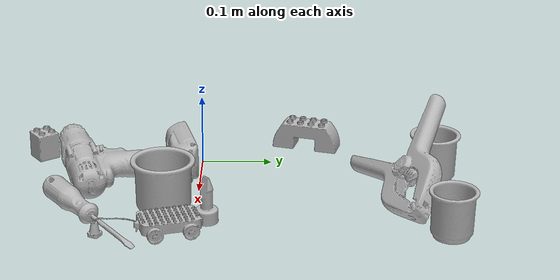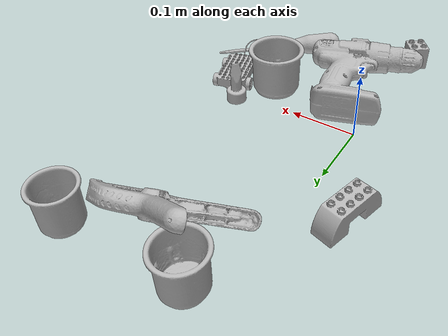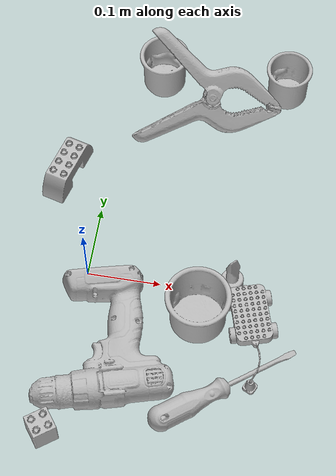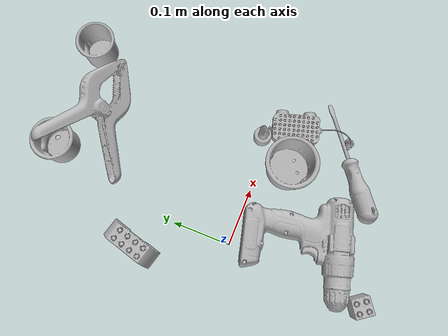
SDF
<sdf version="1.4">
  <world name="default">
    <light name="light1" type="point">
      <pose>0 0 1 0 0 0</pose>
      <diffuse>3 3 3 1</diffuse>
      <specular>3 3 3 1</specular>
    </light>
    <light name="light2" type="point">
      <pose>0 0.5 2 0 0 0</pose>
      <diffuse>1 1 1 1</diffuse>
      <specular>1 1 1 1</specular>
    </light>
    <light name="light3" type="point">
      <pose>0 0.5 2 0 0 0</pose>
      <diffuse>3 3 3 1</diffuse>
      <specular>3 3 3 1</specular>
    </light>
    <scene>
      <ambient>0.7 0.7 0.7</ambient>
    </scene>
    <model name="cup1">
      <link name="link_cup1">
        <collision name="default">
          <geometry>
            <mesh>
              <uri>model://d_cups/collision_meshes/collision.obj</uri>
              <scale>1.0 1.0 1.0</scale>
            </mesh>
          </geometry>
          <surface>
            <friction>
              <ode>
                <mu>0.5</mu>
                <mu2>0.5</mu2>
              </ode>
            </friction>
          <contact>
        <ode>
            <max_vel>0</max_vel>
            <min_depth>0.0001</min_depth>
            <kp>1e8</kp>
        </ode>
    </contact></surface>
        </collision>
        <visual name="default">
          <geometry>
            <mesh>
              <uri>model://d_cups/visual_meshes/visual.dae</uri>
              <scale>1.0 1.0 1.0</scale>
            </mesh>
          </geometry>
        </visual>
        <inertial>
          <mass>0.04943045228719711</mass>
          <pose>0.0008068052702583373 0.0019117395859211683 -0.0022666507866233587 0.2401104468273406 -0.24710716259907536 0.594298245500967</pose>
          <inertia>
            <ixx>4.1384912e-05</ixx>
            <iyy>4.1265153e-05</iyy>
            <izz>3.7460377e-05</izz>
            <ixy>0</ixy>
            <ixz>0</ixz>
            <iyz>0</iyz>
          </inertia>
        </inertial>
      </link>
      <pose>0.04949561506509781 0.330320805311203 0.03466007113456726 3.7356891750043274e-05 -5.5191721860617255e-05 0.42581033693344833</pose>
    </model>
    <model name="cup2">
      <link name="link_cup2">
        <collision name="default">
          <geometry>
            <mesh>
              <uri>model://c_cups/collision_meshes/collision.obj</uri>
              <scale>1.0 1.0 1.0</scale>
            </mesh>
          </geometry>
          <surface>
            <friction>
              <ode>
                <mu>0.5</mu>
                <mu2>0.5</mu2>
              </ode>
            </friction>
          <contact>
        <ode>
            <max_vel>0</max_vel>
            <min_depth>0.0001</min_depth>
            <kp>1e8</kp>
        </ode>
    </contact></surface>
        </collision>
        <visual name="default">
          <geometry>
            <mesh>
              <uri>model://c_cups/visual_meshes/visual.dae</uri>
              <scale>1.0 1.0 1.0</scale>
            </mesh>
          </geometry>
        </visual>
        <inertial>
          <mass>0.02161477506160736</mass>
          <pose>0.0007237254758365452 0.002015391131862998 -0.0012750980677083135 0.3021577101392444 0.013461522825774588 -0.08771822086046323</pose>
          <inertia>
            <ixx>1.607462e-05</ixx>
            <iyy>1.5790554e-05</iyy>
            <izz>1.4215883e-05</izz>
            <ixy>0</ixy>
            <ixz>0</ixz>
            <iyz>0</iyz>
          </inertia>
        </inertial>
      </link>
      <pose>0.22958020865917206 0.33607038855552673 0.03345901891589165 -5.002692275262739e-07 -3.278012775768091e-07 1.4081759934816345</pose>
    </model>
    <model name="cup3">
      <link name="link_cup3">
        <collision name="default">
          <geometry>
            <mesh>
              <uri>model://g_cups/collision_meshes/collision.obj</uri>
              <scale>1.0 1.0 1.0</scale>
            </mesh>
          </geometry>
          <surface>
            <friction>
              <ode>
                <mu>0.5</mu>
                <mu2>0.5</mu2>
              </ode>
            </friction>
          <contact>
        <ode>
            <max_vel>0</max_vel>
            <min_depth>0.0001</min_depth>
            <kp>1e8</kp>
        </ode>
    </contact></surface>
        </collision>
        <visual name="default">
          <geometry>
            <mesh>
              <uri>model://g_cups/visual_meshes/visual.dae</uri>
              <scale>1.0 1.0 1.0</scale>
            </mesh>
          </geometry>
        </visual>
        <inertial>
          <mass>0.04413851350545883</mass>
          <pose>-0.0007946275873109698 -4.206433004583232e-05 -0.002132937777787447 -0.2138199678327952 -0.31410615416341514 0.3111935262320568</pose>
          <inertia>
            <ixx>5.151955e-05</ixx>
            <iyy>5.1344283e-05</iyy>
            <izz>5.3365377e-05</izz>
            <ixy>0</ixy>
            <ixz>0</ixz>
            <iyz>0</iyz>
          </inertia>
        </inertial>
      </link>
      <pose>0.1579732894897461 -0.04457096755504608 0.037199679762125015 6.87639853387641e-05 -0.00022108126717569214 0.5148713610367291</pose>
    </model>
    <model name="toy1">
      <link name="link_toy1">
        <collision name="default">
          <geometry>
            <mesh>
              <uri>model://e_lego_duplo/collision_meshes/collision.obj</uri>
              <scale>1.0 1.0 1.0</scale>
            </mesh>
          </geometry>
          <surface>
            <friction>
              <ode>
                <mu>0.5</mu>
                <mu2>0.5</mu2>
              </ode>
            </friction>
          <contact>
        <ode>
            <max_vel>0</max_vel>
            <min_depth>0.0001</min_depth>
            <kp>1e8</kp>
        </ode>
    </contact></surface>
        </collision>
        <visual name="default">
          <geometry>
            <mesh>
              <uri>model://e_lego_duplo/visual_meshes/visual.dae</uri>
              <scale>1.0 1.0 1.0</scale>
            </mesh>
          </geometry>
        </visual>
        <inertial>
          <mass>0.08806774020195007</mass>
          <pose>0.0003256051568314433 0.00023485405836254358 0.0019521453650668263 -0.02256777049150226 -6.824370740412915e-05 -0.00762515400873393</pose>
          <inertia>
            <ixx>1.8365032e-05</ixx>
            <iyy>7.537481e-05</iyy>
            <izz>7.3399904e-05</izz>
            <ixy>0</ixy>
            <ixz>0</ixz>
            <iyz>0</iyz>
          </inertia>
        </inertial>
      </link>
      <pose>-0.05904051288962364 0.15217973291873932 0.02180900052189827 4.1783271776264923e-07 -6.866915725247893e-08 -1.8323864755554167</pose>
    </model>
    <model name="toy2">
      <link name="link_toy2">
        <collision name="default">
          <geometry>
            <mesh>
              <uri>model://b_lego_duplo/collision_meshes/collision.obj</uri>
              <scale>1.0 1.0 1.0</scale>
            </mesh>
          </geometry>
          <surface>
            <friction>
              <ode>
                <mu>0.5</mu>
                <mu2>0.5</mu2>
              </ode>
            </friction>
          <contact>
        <ode>
            <max_vel>0</max_vel>
            <min_depth>0.0001</min_depth>
            <kp>1e8</kp>
        </ode>
    </contact></surface>
        </collision>
        <visual name="default">
          <geometry>
            <mesh>
              <uri>model://b_lego_duplo/visual_meshes/visual.dae</uri>
              <scale>1.0 1.0 1.0</scale>
            </mesh>
          </geometry>
        </visual>
        <inertial>
          <mass>0.04734363779425621</mass>
          <pose>-0.00011053025809815153 -9.15254986466607e-06 0.0019294298253953457 -0.03749543151759021 -0.02635344242756168 0.4519151706388912</pose>
          <inertia>
            <ixx>9.689229e-06</ixx>
            <iyy>9.754364e-06</iyy>
            <izz>8.632791e-06</izz>
            <ixy>0</ixy>
            <ixz>0</ixz>
            <iyz>0</iyz>
          </inertia>
        </inertial>
      </link>
      <pose>-0.01137882936745882 -0.2329457700252533 0.02181500568985939 1.3455823058938018e-05 1.758333057589767e-05 -0.9382671444939642</pose>
    </model>
    <model name="toy3">
      <link name="link_toy3">
        <collision name="default">
          <geometry>
            <mesh>
              <uri>model://g_lego_duplo/collision_meshes/collision.obj</uri>
              <scale>0.5 0.5 0.5</scale>
            </mesh>
          </geometry>
          <surface>
            <friction>
              <ode>
                <mu>0.5</mu>
                <mu2>0.5</mu2>
              </ode>
            </friction>
          <contact>
        <ode>
            <max_vel>0</max_vel>
            <min_depth>0.0001</min_depth>
            <kp>1e8</kp>
        </ode>
    </contact></surface>
        </collision>
        <visual name="default">
          <geometry>
            <mesh>
              <uri>model://g_lego_duplo/visual_meshes/visual.dae</uri>
              <scale>0.5 0.5 0.5</scale>
            </mesh>
          </geometry>
        </visual>
        <inertial>
          <mass>0.0549229197204113</mass>
          <pose>-0.02502383477985859 0.0008777315961197019 0.0019403378246352077 0.010963030367844774 0.03810824354215502 -0.09653013034360637</pose>
          <inertia>
            <ixx>1.989599e-05</ixx>
            <iyy>6.0152015e-05</iyy>
            <izz>7.525238e-05</izz>
            <ixy>0</ixy>
            <ixz>0</ixz>
            <iyz>0</iyz>
          </inertia>
        </inertial>
      </link>
      <pose>0.2335493117570877 -0.06185854971408844 0.014973394572734833 0.0002668718965331261 -0.003424833367302146 -1.2765140602419058</pose>
    </model>
    <model name="toy4">
      <link name="link_toy4">
        <collision name="default">
          <geometry>
            <mesh>
              <uri>model://e_toy_airplane/collision_meshes/collision.obj</uri>
              <scale>1.0 1.0 1.0</scale>
            </mesh>
          </geometry>
          <surface>
            <friction>
              <ode>
                <mu>0.5</mu>
                <mu2>0.5</mu2>
              </ode>
            </friction>
          <contact>
        <ode>
            <max_vel>0</max_vel>
            <min_depth>0.0001</min_depth>
            <kp>1e8</kp>
        </ode>
    </contact></surface>
        </collision>
        <visual name="default">
          <geometry>
            <mesh>
              <uri>model://e_toy_airplane/visual_meshes/visual.dae</uri>
              <scale>1.0 1.0 1.0</scale>
            </mesh>
          </geometry>
        </visual>
        <inertial>
          <mass>0.02949252724647522</mass>
          <pose>0.0001174047210952267 -2.248294731543865e-05 -0.011187205091118813 0.00551852159670192 0.009228270522190251 0.15041692690710914</pose>
          <inertia>
            <ixx>9.0014555e-06</ixx>
            <iyy>8.909378e-06</iyy>
            <izz>2.7052915e-06</izz>
            <ixy>0</ixy>
            <ixz>0</ixz>
            <iyz>0</iyz>
          </inertia>
        </inertial>
      </link>
      <pose>0.1950436532497406 0.015735801309347153 0.03321252018213272 -2.7928919294928048e-05 -0.00045346361416705405 -0.9161503635871256</pose>
    </model>
    <model name="hardware1">
      <link name="link_hardware1">
        <collision name="default">
          <geometry>
            <mesh>
              <uri>model://power_drill/collision_meshes/collision.obj</uri>
              <scale>1.0 1.0 1.0</scale>
            </mesh>
          </geometry>
          <surface>
            <friction>
              <ode>
                <mu>0.5</mu>
                <mu2>0.5</mu2>
              </ode>
            </friction>
          <contact>
        <ode>
            <max_vel>0</max_vel>
            <min_depth>0.0001</min_depth>
            <kp>1e8</kp>
        </ode>
    </contact></surface>
        </collision>
        <visual name="default">
          <geometry>
            <mesh>
              <uri>model://power_drill/visual_meshes/visual.dae</uri>
              <scale>1.0 1.0 1.0</scale>
            </mesh>
          </geometry>
        </visual>
        <inertial>
          <mass>0.4622694253921509</mass>
          <pose>-0.014780544675886631 0.014369423501193523 0.0012414170196279883 0.0046091653592492164 0.00407302392026691 -0.1836269379856391</pose>
          <inertia>
            <ixx>0.0018837696</ixx>
            <iyy>0.00074116525</iyy>
            <izz>0.0024878501</izz>
            <ixy>0</ixy>
            <ixz>0</ixz>
            <iyz>0</iyz>
          </inertia>
        </inertial>
      </link>
      <pose>0.0350014865398407 -0.1059841588139534 0.027312438935041428 -0.030306015390405613 -0.047252916080392136 -2.8558356031970735</pose>
    </model>
    <model name="hardware2">
      <link name="link_hardware2">
        <collision name="default">
          <geometry>
            <mesh>
              <uri>model://flat_screwdriver/collision_meshes/collision.obj</uri>
              <scale>1.0 1.0 1.0</scale>
            </mesh>
          </geometry>
          <surface>
            <friction>
              <ode>
                <mu>0.5</mu>
                <mu2>0.5</mu2>
              </ode>
            </friction>
          <contact>
        <ode>
            <max_vel>0</max_vel>
            <min_depth>0.0001</min_depth>
            <kp>1e8</kp>
        </ode>
    </contact></surface>
        </collision>
        <visual name="default">
          <geometry>
            <mesh>
              <uri>model://flat_screwdriver/visual_meshes/visual.dae</uri>
              <scale>1.0 1.0 1.0</scale>
            </mesh>
          </geometry>
        </visual>
        <inertial>
          <mass>0.07028686255216599</mass>
          <pose>-0.0489187091588974 -0.0006576801533810794 -0.0006140916375443339 -0.5613212056153659 -0.0032337294395619258 0.006982277044942129</pose>
          <inertia>
            <ixx>8.3043415e-06</ixx>
            <iyy>0.00010542549</iyy>
            <izz>0.00010537667</izz>
            <ixy>0</ixy>
            <ixz>0</ixz>
            <iyz>0</iyz>
          </inertia>
        </inertial>
      </link>
      <pose>0.20487776398658752 -0.14004237949848175 0.01554080005735159 0.24072822519049955 0.048971345318389446 0.6559226421501788</pose>
    </model>
    <model name="hardware3">
      <link name="link_hardware3">
        <collision name="default">
          <geometry>
            <mesh>
              <uri>model://extra_large_clamp/collision_meshes/collision.obj</uri>
              <scale>1.0 1.0 1.0</scale>
            </mesh>
          </geometry>
          <surface>
            <friction>
              <ode>
                <mu>0.5</mu>
                <mu2>0.5</mu2>
              </ode>
            </friction>
          <contact>
        <ode>
            <max_vel>0</max_vel>
            <min_depth>0.0001</min_depth>
            <kp>1e8</kp>
        </ode>
    </contact></surface>
        </collision>
        <visual name="default">
          <geometry>
            <mesh>
              <uri>model://extra_large_clamp/visual_meshes/visual.dae</uri>
              <scale>1.0 1.0 1.0</scale>
            </mesh>
          </geometry>
        </visual>
        <inertial>
          <mass>0.19051048159599304</mass>
          <pose>0.0032320222817361355 -7.615413051098585e-05 0.0003172157157678157 0.013786989477745152 -0.0005066809054022428 -0.0008935736893705532</pose>
          <inertia>
            <ixx>0.00028954487</ixx>
            <iyy>0.0004985067</iyy>
            <izz>0.0007616155</izz>
            <ixy>0</ixy>
            <ixz>0</ixz>
            <iyz>0</iyz>
          </inertia>
        </inertial>
      </link>
      <pose>0.12490640580654144 0.2865637540817261 0.04598071053624153 0.7595215871989265 0.21294068680334025 0.08978924246665082</pose>
    </model>
  <physics type="ode">
      <max_contacts>50</max_contacts>
      <ode>
        <solver>
          <type>quick</type>
          <iters>75</iters>
        </solver>
        <constraints>
          <contact_max_correcting_vel>0</contact_max_correcting_vel>
          <contact_surface_layer>0</contact_surface_layer>
        </constraints>
      </ode>
    </physics></world>
</sdf>
